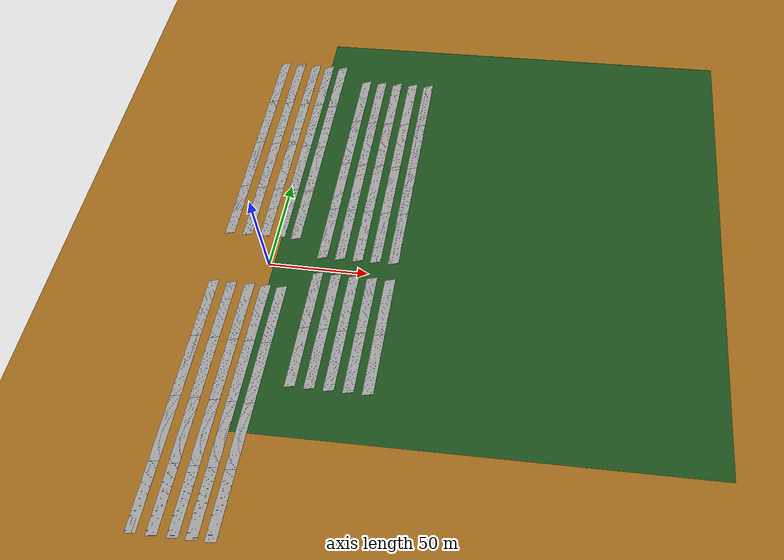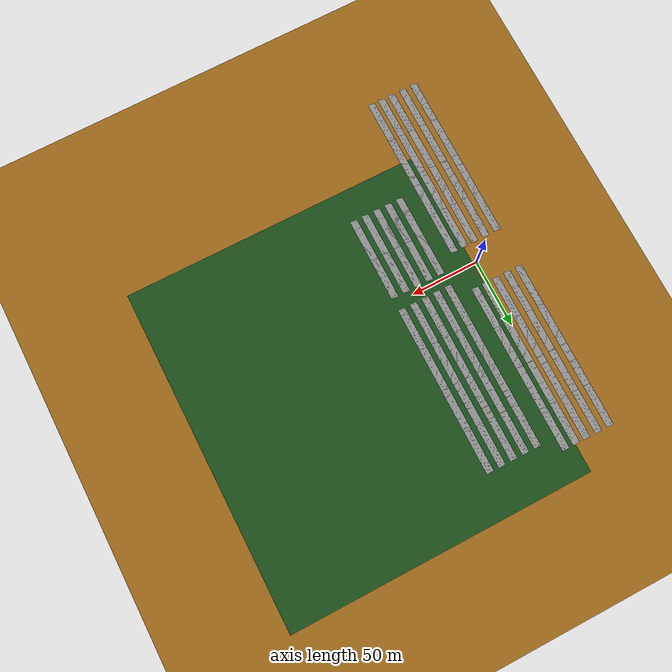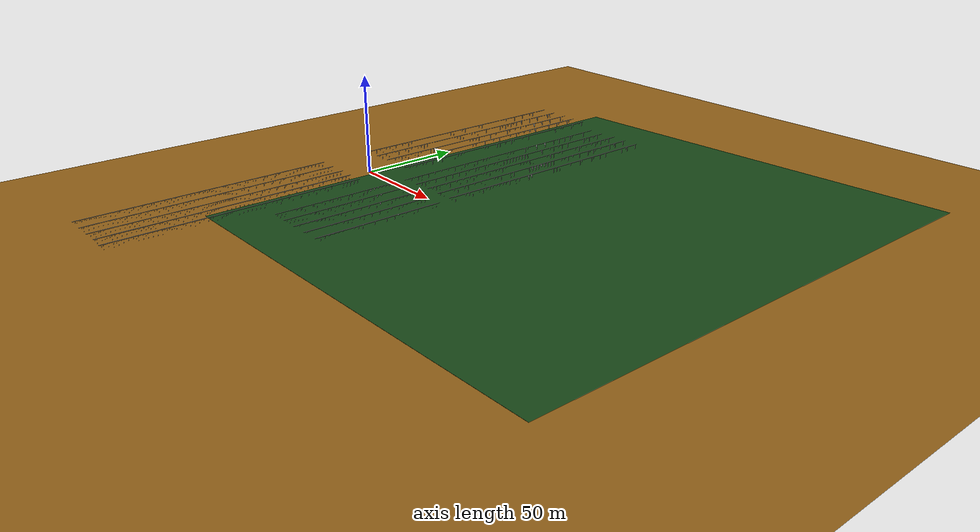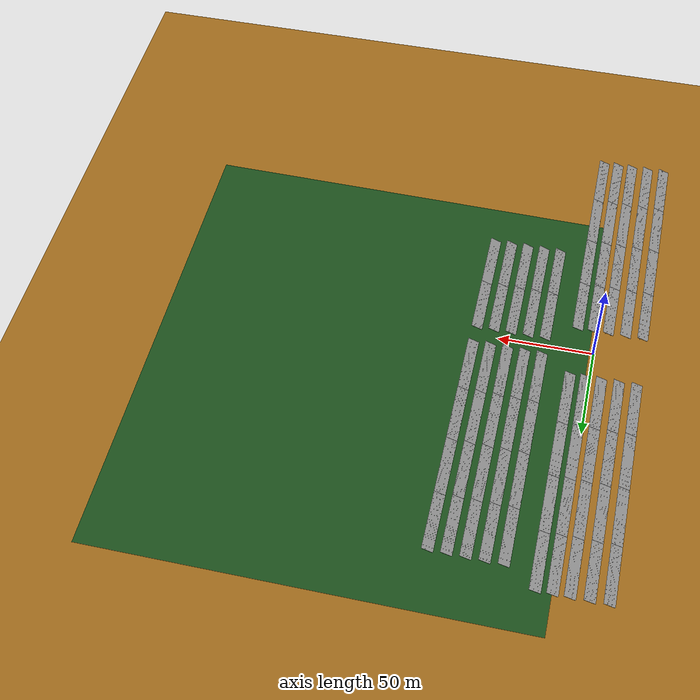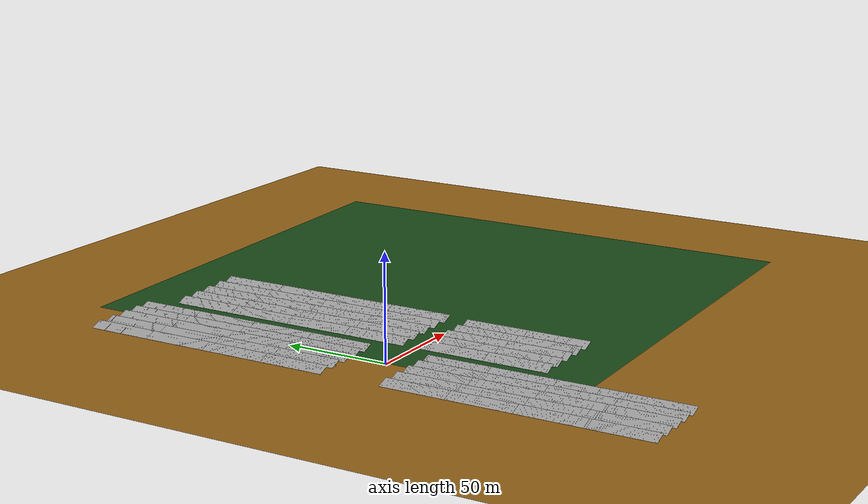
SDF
<sdf version="1.7">
 <world name="default">
  <light name="sun" type="directional">
   <pose>0 0 10 0 -0 0</pose>
   <diffuse>0.8 0.8 0.8 1</diffuse>
   <specular>0.2 0.2 0.2 1</specular>
   <attenuation>
    <range>1000</range>
    <constant>0.9</constant>
    <linear>0.01</linear>
    <quadratic>0.001</quadratic>
   </attenuation>
   <direction>-0.5 0.1 -0.9</direction>
   <spot><inner_angle>0</inner_angle><outer_angle>0</outer_angle><falloff>0</falloff></spot>
  </light>
  <spherical_coordinates>
   <surface_model>EARTH_WGS84</surface_model>
   <latitude_deg>39.551549</latitude_deg>
   <longitude_deg>-0.468086</longitude_deg>
   <elevation>0</elevation>
   <heading_deg>0</heading_deg>
  </spherical_coordinates>
  <model name="ground_plane">
   <static>1</static>
   <link name="link">
    <collision name="collision">
     <geometry><plane><normal>0 0 1</normal><size>300 300</size></plane></geometry>
     <surface>
      <contact><collide_bitmask>65535</collide_bitmask></contact>
      <friction><ode><mu>100</mu><mu2>50</mu2></ode></friction>
     </surface>
    </collision>
    <visual name="visual">
     <cast_shadows>0</cast_shadows>
     <geometry><plane><normal>0 0 1</normal><size>300 300</size></plane></geometry>
     <material><diffuse>0.6 0.4 0.1 1.0</diffuse><ambient>0.6 0.4 0.1 1.0</ambient></material>
    </visual>
   </link>
  </model>
  <gravity>0 0 -9.8</gravity>
  <magnetic_field>6e-06 2.3e-05 -4.2e-05</magnetic_field>
  <atmosphere type="adiabatic"/>
  <physics type="ode">
   <max_step_size>0.004</max_step_size>
   <real_time_factor>1</real_time_factor>
   <real_time_update_rate>250</real_time_update_rate>
  </physics>
  <scene><ambient>0.4 0.4 0.4 1</ambient><background>0.7 0.7 0.7 1</background><shadows>1</shadows></scene>
  <include>
   <uri>model://sloping_floor</uri>
   <pose>99.036 35.8598 1.49001 0 -0 0</pose>
   <name>sloping_floor_up</name>
  </include>
  <include>
   <uri>model://robot_doghouse</uri>
   <pose>2.0 1.0 -0.027369 0 0 -1.57547</pose>
   <name>robot_doghouse</name>
  </include>
  <include>
   <uri>model://solar_panel_row</uri>
   <pose>26.0 35.2524 0.052077 0 0.035523 -3.14159</pose>
   <name>solar_panel_row_up_left_1_1</name>
  </include>
  <include>
   <uri>model://solar_panel_row</uri>
   <pose>26.0 66.4839 0.052077 0 0.035523 -3.14159</pose>
   <name>solar_panel_row_up_left_1_2</name>
  </include>
  <include>
   <uri>model://solar_panel_row</uri>
   <pose>26.0 97.7154 0.052077 0 0.035523 -3.14159</pose>
   <name>solar_panel_row_up_left_1_3</name>
  </include>
  <include>
   <uri>model://solar_panel_row</uri>
   <pose>26.0 128.9469 0.052077 0 0.035523 -3.14159</pose>
   <name>solar_panel_row_up_left_1_4</name>
  </include>
  <include>
   <uri>model://solar_panel_row</uri>
   <pose>35 35.2524 0.231 0 0.035523 -3.14159</pose>
   <name>solar_panel_row_up_left_2_1</name>
  </include>
  <include>
   <uri>model://solar_panel_row</uri>
   <pose>35 66.4839 0.231 0 0.035523 -3.14159</pose>
   <name>solar_panel_row_up_left_2_2</name>
  </include>
  <include>
   <uri>model://solar_panel_row</uri>
   <pose>35 97.7154 0.231 0 0.035523 -3.14159</pose>
   <name>solar_panel_row_up_left_2_3</name>
  </include>
  <include>
   <uri>model://solar_panel_row</uri>
   <pose>35 128.9469 0.231 0 0.035523 -3.14159</pose>
   <name>solar_panel_row_up_left_2_4</name>
  </include>
  <include>
   <uri>model://solar_panel_row</uri>
   <pose>44 35.2524 0.41 0 0.035523 -3.14159</pose>
   <name>solar_panel_row_up_left_3_1</name>
  </include>
  <include>
   <uri>model://solar_panel_row</uri>
   <pose>44 66.4839 0.41 0 0.035523 -3.14159</pose>
   <name>solar_panel_row_up_left_3_2</name>
  </include>
  <include>
   <uri>model://solar_panel_row</uri>
   <pose>44 97.7154 0.41 0 0.035523 -3.14159</pose>
   <name>solar_panel_row_up_left_3_3</name>
  </include>
  <include>
   <uri>model://solar_panel_row</uri>
   <pose>44 128.9469 0.41 0 0.035523 -3.14159</pose>
   <name>solar_panel_row_up_left_3_4</name>
  </include>
  <include>
   <uri>model://solar_panel_row</uri>
   <pose>53 35.2524 0.589 0 0.035523 -3.14159</pose>
   <name>solar_panel_row_up_left_4_1</name>
  </include>
  <include>
   <uri>model://solar_panel_row</uri>
   <pose>53 66.4839 0.589 0 0.035523 -3.14159</pose>
   <name>solar_panel_row_up_left_4_2</name>
  </include>
  <include>
   <uri>model://solar_panel_row</uri>
   <pose>53 97.7154 0.589 0 0.035523 -3.14159</pose>
   <name>solar_panel_row_up_left_4_3</name>
  </include>
  <include>
   <uri>model://solar_panel_row</uri>
   <pose>53 128.9469 0.589 0 0.035523 -3.14159</pose>
   <name>solar_panel_row_up_left_4_4</name>
  </include>
  <include>
   <uri>model://solar_panel_row</uri>
   <pose>62 35.2524 0.768 0 0.035523 -3.14159</pose>
   <name>solar_panel_row_up_left_5_1</name>
  </include>
  <include>
   <uri>model://solar_panel_row</uri>
   <pose>62 66.4839 0.768 0 0.035523 -3.14159</pose>
   <name>solar_panel_row_up_left_5_2</name>
  </include>
  <include>
   <uri>model://solar_panel_row</uri>
   <pose>62 97.7154 0.768 0 0.035523 -3.14159</pose>
   <name>solar_panel_row_up_left_5_3</name>
  </include>
  <include>
   <uri>model://solar_panel_row</uri>
   <pose>62 128.9469 0.768 0 0.035523 -3.14159</pose>
   <name>solar_panel_row_up_left_5_4</name>
  </include>
  <include>
   <uri>model://solar_panel_row</uri>
   <pose>26.0 -5 0.052077 0 0.035523 -3.14159</pose>
   <name>solar_panel_row_up_right_1_1</name>
  </include>
  <include>
   <uri>model://solar_panel_row</uri>
   <pose>26.0 -36.2315 0.052077 0 0.035523 -3.14159</pose>
   <name>solar_panel_row_up_right_1_2</name>
  </include>
  <include>
   <uri>model://solar_panel_row</uri>
   <pose>35.0 -5 0.052077 0 0.035523 -3.14159</pose>
   <name>solar_panel_row_up_right_2_1</name>
  </include>
  <include>
   <uri>model://solar_panel_row</uri>
   <pose>35.0 -36.2315 0.052077 0 0.035523 -3.14159</pose>
   <name>solar_panel_row_up_right_2_2</name>
  </include>
  <include>
   <uri>model://solar_panel_row</uri>
   <pose>44.0 -5 0.052077 0 0.035523 -3.14159</pose>
   <name>solar_panel_row_up_right_3_1</name>
  </include>
  <include>
   <uri>model://solar_panel_row</uri>
   <pose>44.0 -36.2315 0.052077 0 0.035523 -3.14159</pose>
   <name>solar_panel_row_up_right_3_2</name>
  </include>
  <include>
   <uri>model://solar_panel_row</uri>
   <pose>53.0 -5 0.052077 0 0.035523 -3.14159</pose>
   <name>solar_panel_row_up_right_4_1</name>
  </include>
  <include>
   <uri>model://solar_panel_row</uri>
   <pose>53.0 -36.2315 0.052077 0 0.035523 -3.14159</pose>
   <name>solar_panel_row_up_right_4_2</name>
  </include>
  <include>
   <uri>model://solar_panel_row</uri>
   <pose>62.0 -5 0.052077 0 0.035523 -3.14159</pose>
   <name>solar_panel_row_up_right_5_1</name>
  </include>
  <include>
   <uri>model://solar_panel_row</uri>
   <pose>62.0 -36.2315 0.052077 0 0.035523 -3.14159</pose>
   <name>solar_panel_row_up_right_5_2</name>
  </include>
  <include>
   <uri>model://solar_panel_row</uri>
   <pose>10.0 -15 0.0 0 0.0 -3.14159</pose>
   <name>solar_panel_row_down_right_1_1</name>
  </include>
  <include>
   <uri>model://solar_panel_row</uri>
   <pose>10.0 -46.2315 0.0 0 0.0 -3.14159</pose>
   <name>solar_panel_row_down_right_1_2</name>
  </include>
  <include>
   <uri>model://solar_panel_row</uri>
   <pose>10.0 -77.463 0.0 0 0.0 -3.14159</pose>
   <name>solar_panel_row_down_right_1_3</name>
  </include>
  <include>
   <uri>model://solar_panel_row</uri>
   <pose>10.0 -108.6945 0.0 0 0.0 -3.14159</pose>
   <name>solar_panel_row_down_right_1_4</name>
  </include>
  <include>
   <uri>model://solar_panel_row</uri>
   <pose>2.0 -15 0.0 0 0.0 -3.14159</pose>
   <name>solar_panel_row_down_right_2_1</name>
  </include>
  <include>
   <uri>model://solar_panel_row</uri>
   <pose>2.0 -46.2315 0.0 0 0.0 -3.14159</pose>
   <name>solar_panel_row_down_right_2_2</name>
  </include>
  <include>
   <uri>model://solar_panel_row</uri>
   <pose>2.0 -77.463 0.0 0 0.0 -3.14159</pose>
   <name>solar_panel_row_down_right_2_3</name>
  </include>
  <include>
   <uri>model://solar_panel_row</uri>
   <pose>2.0 -108.6945 0.0 0 0.0 -3.14159</pose>
   <name>solar_panel_row_down_right_2_4</name>
  </include>
  <include>
   <uri>model://solar_panel_row</uri>
   <pose>-6.0 -15 0.0 0 0.0 -3.14159</pose>
   <name>solar_panel_row_down_right_3_1</name>
  </include>
  <include>
   <uri>model://solar_panel_row</uri>
   <pose>-6.0 -46.2315 0.0 0 0.0 -3.14159</pose>
   <name>solar_panel_row_down_right_3_2</name>
  </include>
  <include>
   <uri>model://solar_panel_row</uri>
   <pose>-6.0 -77.463 0.0 0 0.0 -3.14159</pose>
   <name>solar_panel_row_down_right_3_3</name>
  </include>
  <include>
   <uri>model://solar_panel_row</uri>
   <pose>-6.0 -108.6945 0.0 0 0.0 -3.14159</pose>
   <name>solar_panel_row_down_right_3_4</name>
  </include>
  <include>
   <uri>model://solar_panel_row</uri>
   <pose>-15.0 -15 0.0 0 0.0 -3.14159</pose>
   <name>solar_panel_row_down_right_4_1</name>
  </include>
  <include>
   <uri>model://solar_panel_row</uri>
   <pose>-15.0 -46.2315 0.0 0 0.0 -3.14159</pose>
   <name>solar_panel_row_down_right_4_2</name>
  </include>
  <include>
   <uri>model://solar_panel_row</uri>
   <pose>-15.0 -77.463 0.0 0 0.0 -3.14159</pose>
   <name>solar_panel_row_down_right_4_3</name>
  </include>
  <include>
   <uri>model://solar_panel_row</uri>
   <pose>-15.0 -108.6945 0.0 0 0.0 -3.14159</pose>
   <name>solar_panel_row_down_right_4_4</name>
  </include>
  <include>
   <uri>model://solar_panel_row</uri>
   <pose>-24.0 -15 0.0 0 0.0 -3.14159</pose>
   <name>solar_panel_row_down_right_5_1</name>
  </include>
  <include>
   <uri>model://solar_panel_row</uri>
   <pose>-24.0 -46.2315 0.0 0 0.0 -3.14159</pose>
   <name>solar_panel_row_down_right_5_2</name>
  </include>
  <include>
   <uri>model://solar_panel_row</uri>
   <pose>-24.0 -77.463 0.0 0 0.0 -3.14159</pose>
   <name>solar_panel_row_down_right_5_3</name>
  </include>
  <include>
   <uri>model://solar_panel_row</uri>
   <pose>-24.0 -108.6945 0.0 0 0.0 -3.14159</pose>
   <name>solar_panel_row_down_right_5_4</name>
  </include>
  <include>
   <uri>model://solar_panel_row</uri>
   <pose>10.0 45.2524 0.0 0 0.0 -3.14159</pose>
   <name>solar_panel_row_down_left_1_1</name>
  </include>
  <include>
   <uri>model://solar_panel_row</uri>
   <pose>10.0 76.4879 0.0 0 0.0 -3.14159</pose>
   <name>solar_panel_row_down_left_1_2</name>
  </include>
  <include>
   <uri>model://solar_panel_row</uri>
   <pose>10.0 107.7194 0.0 0 0.0 -3.14159</pose>
   <name>solar_panel_row_down_left_1_3</name>
  </include>
  <include>
   <uri>model://solar_panel_row</uri>
   <pose>10.0 138.9509 0.0 0 0.0 -3.14159</pose>
   <name>solar_panel_row_down_left_1_4</name>
  </include>
  <include>
   <uri>model://solar_panel_row</uri>
   <pose>2.0 45.2524 0.0 0 0.0 -3.14159</pose>
   <name>solar_panel_row_down_left_2_1</name>
  </include>
  <include>
   <uri>model://solar_panel_row</uri>
   <pose>2.0 76.4879 0.0 0 0.0 -3.14159</pose>
   <name>solar_panel_row_down_left_2_2</name>
  </include>
  <include>
   <uri>model://solar_panel_row</uri>
   <pose>2.0 107.7194 0.0 0 0.0 -3.14159</pose>
   <name>solar_panel_row_down_left_2_3</name>
  </include>
  <include>
   <uri>model://solar_panel_row</uri>
   <pose>2.0 138.9509 0.0 0 0.0 -3.14159</pose>
   <name>solar_panel_row_down_left_2_4</name>
  </include>
  <include>
   <uri>model://solar_panel_row</uri>
   <pose>-6.0 45.2524 0.0 0  0.0 -3.14159</pose>
   <name>solar_panel_row_down_left_3_1</name>
  </include>
  <include>
   <uri>model://solar_panel_row</uri>
   <pose>-6.0 76.4879 0.0 0 0.0 -3.14159</pose>
   <name>solar_panel_row_down_left_3_2</name>
  </include>
  <include>
   <uri>model://solar_panel_row</uri>
   <pose>-6.0 107.7194 0.0 0 0.0 -3.14159</pose>
   <name>solar_panel_row_down_left_3_3</name>
  </include>
  <include>
   <uri>model://solar_panel_row</uri>
   <pose>-6.0 138.9509 0.0 0 0.0 -3.14159</pose>
   <name>solar_panel_row_down_left_3_4</name>
  </include>
  <include>
   <uri>model://solar_panel_row</uri>
   <pose>-15.0 45.2524 0.0 0 0.0 -3.14159</pose>
   <name>solar_panel_row_down_left_4_1</name>
  </include>
  <include>
   <uri>model://solar_panel_row</uri>
   <pose>-15.0 76.4879 0.0 0 0.0 -3.14159</pose>
   <name>solar_panel_row_down_left_4_2</name>
  </include>
  <include>
   <uri>model://solar_panel_row</uri>
   <pose>-15.0 107.7194 0.0 0 0.0 -3.14159</pose>
   <name>solar_panel_row_down_left_4_3</name>
  </include>
  <include>
   <uri>model://solar_panel_row</uri>
   <pose>-15.0 138.9509 0.0 0 0.0 -3.14159</pose>
   <name>solar_panel_row_down_left_4_4</name>
  </include>
  <include>
   <uri>model://solar_panel_row</uri>
   <pose>-24.0 45.2524 0.0 0 0.0 -3.14159</pose>
   <name>solar_panel_row_down_left_5_1</name>
  </include>
  <include>
   <uri>model://solar_panel_row</uri>
   <pose>-24.0 76.4879 0.0 0 0.0 -3.14159</pose>
   <name>solar_panel_row_down_left_5_2</name>
  </include>
  <include>
   <uri>model://solar_panel_row</uri>
   <pose>-24.0 107.7194 0.0 0 0.0 -3.14159</pose>
   <name>solar_panel_row_down_left_5_3</name>
  </include>
  <include>
   <uri>model://solar_panel_row</uri>
   <pose>-24.0 138.9509 0.0 0 0.0 -3.14159</pose>
   <name>solar_panel_row_down_left_5_4</name>
  </include>
 </world>
</sdf>

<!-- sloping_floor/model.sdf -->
<sdf version='1.7'>
  <model name='sloping_floor'>
    <link name='link'>
      <inertial>
        <mass>1514.9</mass>
        <inertia>
          <ixx>6.91743e+06</ixx>
          <ixy>0</ixy>
          <ixz>0</ixz>
          <iyy>3.85662e+06</iyy>
          <iyz>0</iyz>
          <izz>1.07741e+07</izz>
        </inertia>
        <pose>0 0 0 0 -0 0</pose>
      </inertial>
      <self_collide>0</self_collide>
      <enable_wind>0</enable_wind>
      <kinematic>0</kinematic>
      <pose>0 0 0 0 -0.019625 0</pose>
      <visual name='visual'>
        <geometry>
          <box>
            <size>250 250 0.037027</size>
          </box>
        </geometry>
        <material>
            <diffuse>0.1 0.3 0.1 1.0</diffuse>
            <ambient>0.1 0.3 0.1 1.0</ambient>
        </material>
        <pose>0 0 0 0 -0 0</pose>
        <transparency>0</transparency>
        <cast_shadows>1</cast_shadows>
      </visual>
      <collision name='collision'>
        <laser_retro>0</laser_retro>
        <max_contacts>10</max_contacts>
        <pose>0 0 0 0 -0 0</pose>
        <geometry>
          <box>
            <size>250 250 0.037027</size>
          </box>
        </geometry>
        <surface>
          <friction>
            <ode>
              <mu>1</mu>
              <mu2>1</mu2>
              <fdir1>0 0 0</fdir1>
              <slip1>0</slip1>
              <slip2>0</slip2>
            </ode>
            <torsional>
              <coefficient>1</coefficient>
              <patch_radius>0</patch_radius>
              <surface_radius>0</surface_radius>
              <use_patch_radius>1</use_patch_radius>
              <ode>
                <slip>0</slip>
              </ode>
            </torsional>
          </friction>
          <bounce>
            <restitution_coefficient>0</restitution_coefficient>
            <threshold>1e+06</threshold>
          </bounce>
          <contact>
            <collide_without_contact>0</collide_without_contact>
            <collide_without_contact_bitmask>1</collide_without_contact_bitmask>
            <collide_bitmask>1</collide_bitmask>
            <ode>
              <soft_cfm>0</soft_cfm>
              <soft_erp>0.2</soft_erp>
              <kp>1e+13</kp>
              <kd>1</kd>
              <max_vel>0.01</max_vel>
              <min_depth>0</min_depth>
            </ode>
            <bullet>
              <split_impulse>1</split_impulse>
              <split_impulse_penetration_threshold>-0.01</split_impulse_penetration_threshold>
              <soft_cfm>0</soft_cfm>
              <soft_erp>0.2</soft_erp>
              <kp>1e+13</kp>
              <kd>1</kd>
            </bullet>
          </contact>
        </surface>
      </collision>
    </link>
    <static>1</static>
    <allow_auto_disable>1</allow_auto_disable>
  </model>
</sdf>

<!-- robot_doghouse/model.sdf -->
<sdf version='1.6'>
  <model name='robot_doghouse'>
    <link name='link_1'>
      <inertial>
        <mass>1</mass>
        <inertia>
          <ixx>0.166667</ixx>
          <ixy>0</ixy>
          <ixz>0</ixz>
          <iyy>0.166667</iyy>
          <iyz>0</iyz>
          <izz>0.166667</izz>
        </inertia>
      </inertial>
      <pose frame=''>0 -0 0 0 -0 0</pose>
      <visual name='visual'>
        <pose frame=''>0 0 0 0 -0 0</pose>
        <geometry>
          <mesh>
             <uri>model://robot_doghouse/meshes/robot_doghouse.stl</uri>
            <scale>1 1.2 1</scale>
          </mesh>
        </geometry>
        <material>
          <lighting>1</lighting>
          <script>
            <uri>file://media/materials/scripts/gazebo.material</uri>
            <name>Gazebo/Grey</name>
          </script>
        </material>
        <transparency>0</transparency>
        <cast_shadows>1</cast_shadows>
      </visual>
      <collision name='collision'>
        <laser_retro>0</laser_retro>
        <max_contacts>10</max_contacts>
        <pose frame=''>0 0 0 0 -0 0</pose>
        <geometry>
          <mesh>
            <uri>model://robot_doghouse/meshes/robot_doghouse.stl</uri>
            <scale>1 1.2 1</scale>
          </mesh>
        </geometry>
        <surface>
          <friction>
            <ode>
              <mu>1</mu>
              <mu2>1</mu2>
              <fdir1>0 0 0</fdir1>
              <slip1>0</slip1>
              <slip2>0</slip2>
            </ode>
            <torsional>
              <coefficient>1</coefficient>
              <patch_radius>0</patch_radius>
              <surface_radius>0</surface_radius>
              <use_patch_radius>1</use_patch_radius>
              <ode>
                <slip>0</slip>
              </ode>
            </torsional>
          </friction>
          <bounce>
            <restitution_coefficient>0</restitution_coefficient>
            <threshold>1e+06</threshold>
          </bounce>
          <contact>
            <collide_without_contact>0</collide_without_contact>
            <collide_without_contact_bitmask>1</collide_without_contact_bitmask>
            <collide_bitmask>1</collide_bitmask>
            <ode>
              <soft_cfm>0</soft_cfm>
              <soft_erp>0.2</soft_erp>
              <kp>1e+13</kp>
              <kd>1</kd>
              <max_vel>0.01</max_vel>
              <min_depth>0</min_depth>
            </ode>
            <bullet>
              <split_impulse>1</split_impulse>
              <split_impulse_penetration_threshold>-0.01</split_impulse_penetration_threshold>
              <soft_cfm>0</soft_cfm>
              <soft_erp>0.2</soft_erp>
              <kp>1e+13</kp>
              <kd>1</kd>
            </bullet>
          </contact>
        </surface>
      </collision>
    </link>
    <static>1</static>
    <allow_auto_disable>1</allow_auto_disable>
  </model>
</sdf>

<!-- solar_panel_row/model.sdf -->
<sdf version='1.6'>
  <model name='solar_panel_row'>
    <link name='link_1'>
      <inertial>
        <mass>1</mass>
        <inertia>
          <ixx>0.166667</ixx>
          <ixy>0</ixy>
          <ixz>0</ixz>
          <iyy>0.166667</iyy>
          <iyz>0</iyz>
          <izz>0.166667</izz>
        </inertia>
      </inertial>
      <pose frame=''>0 -0 0 0 -0 0</pose>
      <visual name='visual'>
        <pose frame=''>0 0 0 0 -0 0</pose>
        <geometry>
          <mesh>
             <uri>model://solar_panel_row/meshes/solar_panel_row.stl</uri>
            <scale>1 1 1</scale>
          </mesh>
        </geometry>
        <material>
          <lighting>1</lighting>
          <script>
            <uri>file://media/materials/scripts/gazebo.material</uri>
            <name>Gazebo/Grey</name>
          </script>
        </material>
        <transparency>0</transparency>
        <cast_shadows>1</cast_shadows>
      </visual>
      <collision name='collision'>
        <laser_retro>0</laser_retro>
        <max_contacts>10</max_contacts>
        <pose frame=''>0 0 0 0 -0 0</pose>
        <geometry>
          <mesh>
            <uri>model://solar_panel_row/meshes/solar_panel_row.stl</uri>
            <scale>1 1 1</scale>
          </mesh>
        </geometry>
        <surface>
          <friction>
            <ode>
              <mu>1</mu>
              <mu2>1</mu2>
              <fdir1>0 0 0</fdir1>
              <slip1>0</slip1>
              <slip2>0</slip2>
            </ode>
            <torsional>
              <coefficient>1</coefficient>
              <patch_radius>0</patch_radius>
              <surface_radius>0</surface_radius>
              <use_patch_radius>1</use_patch_radius>
              <ode>
                <slip>0</slip>
              </ode>
            </torsional>
          </friction>
          <bounce>
            <restitution_coefficient>0</restitution_coefficient>
            <threshold>1e+06</threshold>
          </bounce>
          <contact>
            <collide_without_contact>0</collide_without_contact>
            <collide_without_contact_bitmask>1</collide_without_contact_bitmask>
            <collide_bitmask>1</collide_bitmask>
            <ode>
              <soft_cfm>0</soft_cfm>
              <soft_erp>0.2</soft_erp>
              <kp>1e+13</kp>
              <kd>1</kd>
              <max_vel>0.01</max_vel>
              <min_depth>0</min_depth>
            </ode>
            <bullet>
              <split_impulse>1</split_impulse>
              <split_impulse_penetration_threshold>-0.01</split_impulse_penetration_threshold>
              <soft_cfm>0</soft_cfm>
              <soft_erp>0.2</soft_erp>
              <kp>1e+13</kp>
              <kd>1</kd>
            </bullet>
          </contact>
        </surface>
      </collision>
    </link>
    <static>1</static>
    <allow_auto_disable>1</allow_auto_disable>
  </model>
</sdf>
